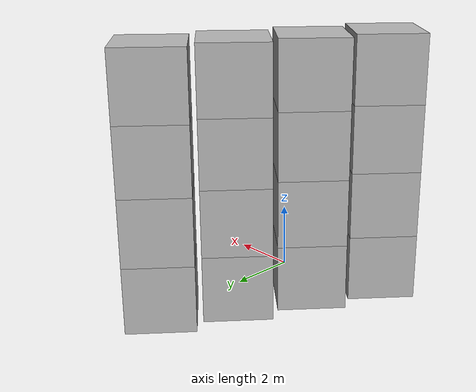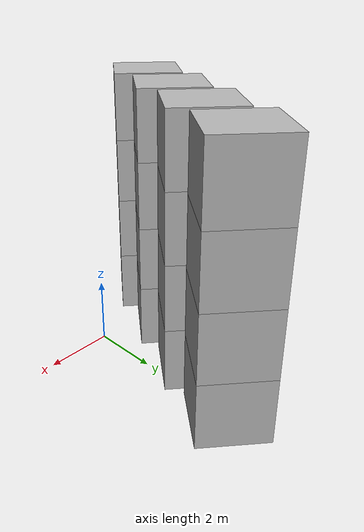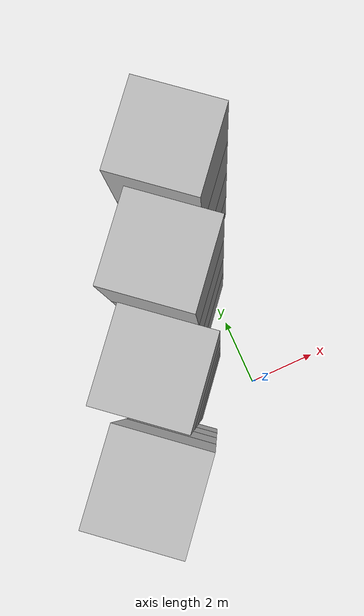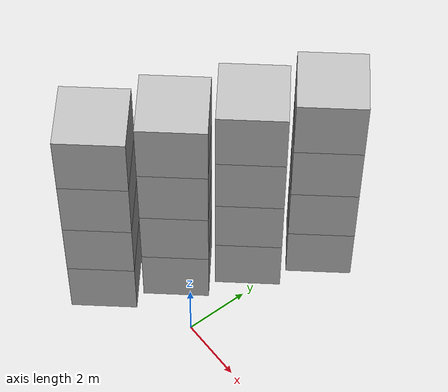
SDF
<sdf version="1.5">
 <world name="default">
  <camera name="user_camera"><pose>0 0 10 0 0.3 2.356</pose></camera>
  <include><uri>model://sun</uri></include>
  <physics name="default_physics" default="0" type="ode">
   <gravity>0 0 -9.8066</gravity>
   <ode>
    <solver>
     <type>quick</type>
     <iters>10</iters>
     <sor>1.3</sor>
     <use_dynamic_moi_rescaling>0</use_dynamic_moi_rescaling>
    </solver>
    <constraints>
     <cfm>0</cfm>
     <erp>0.2</erp>
     <contact_max_correcting_vel>100</contact_max_correcting_vel>
     <contact_surface_layer>0.001</contact_surface_layer>
    </constraints>
   </ode>
   <max_step_size>0.004</max_step_size>
   <real_time_factor>1</real_time_factor>
   <real_time_update_rate>250</real_time_update_rate>
   <magnetic_field>6.0e-6 2.3e-5 -4.2e-5</magnetic_field>
  </physics>
  <model name="obstacle_left_1">
   <static>true</static>
   <pose>-3 -1 1 0 0 -0.7</pose>
   <link name="link">
    <collision name="collision"><geometry><box><size>2 2 2</size></box></geometry></collision>
    <visual name="visual"><geometry><box><size>2 2 2</size></box></geometry></visual>
   </link>
  </model>
  <model name="obstacle_left_11">
   <static>true</static>
   <pose>-3 -1 3 0 0 -0.7</pose>
   <link name="link">
    <collision name="collision"><geometry><box><size>2 2 2</size></box></geometry></collision>
    <visual name="visual"><geometry><box><size>2 2 2</size></box></geometry></visual>
   </link>
  </model>
  <model name="obstacle_left_12">
   <static>true</static>
   <pose>-3 -1 5 0 0 -0.7</pose>
   <link name="link">
    <collision name="collision"><geometry><box><size>2 2 2</size></box></geometry></collision>
    <visual name="visual"><geometry><box><size>2 2 2</size></box></geometry></visual>
   </link>
  </model>
  <model name="obstacle_left_13">
   <static>true</static>
   <pose>-3 -1 7 0 0 -0.7</pose>
   <link name="link">
    <collision name="collision"><geometry><box><size>2 2 2</size></box></geometry></collision>
    <visual name="visual"><geometry><box><size>2 2 2</size></box></geometry></visual>
   </link>
  </model>
  <model name="obstacle_left_2">
   <static>true</static>
   <pose>-2 1 1 0 0 -0.7</pose>
   <link name="link">
    <collision name="collision"><geometry><box><size>2 2 2</size></box></geometry></collision>
    <visual name="visual"><geometry><box><size>2 2 2</size></box></geometry></visual>
   </link>
  </model>
  <model name="obstacle_left_21">
   <static>true</static>
   <pose>-2 1 3 0 0 -0.7</pose>
   <link name="link">
    <collision name="collision"><geometry><box><size>2 2 2</size></box></geometry></collision>
    <visual name="visual"><geometry><box><size>2 2 2</size></box></geometry></visual>
   </link>
  </model>
  <model name="obstacle_left_22">
   <static>true</static>
   <pose>-2 1 5 0 0 -0.7</pose>
   <link name="link">
    <collision name="collision"><geometry><box><size>2 2 2</size></box></geometry></collision>
    <visual name="visual"><geometry><box><size>2 2 2</size></box></geometry></visual>
   </link>
  </model>
  <model name="obstacle_left_23">
   <static>true</static>
   <pose>-2 1 7 0 0 -0.7</pose>
   <link name="link">
    <collision name="collision"><geometry><box><size>2 2 2</size></box></geometry></collision>
    <visual name="visual"><geometry><box><size>2 2 2</size></box></geometry></visual>
   </link>
  </model>
  <model name="obstacle_left_3">
   <static>true</static>
   <pose>-1 3 1 0 0 -0.7</pose>
   <link name="link">
    <collision name="collision"><geometry><box><size>2 2 2</size></box></geometry></collision>
    <visual name="visual"><geometry><box><size>2 2 2</size></box></geometry></visual>
   </link>
  </model>
  <model name="obstacle_left_31">
   <static>true</static>
   <pose>-1 3 3 0 0 -0.7</pose>
   <link name="link">
    <collision name="collision"><geometry><box><size>2 2 2</size></box></geometry></collision>
    <visual name="visual"><geometry><box><size>2 2 2</size></box></geometry></visual>
   </link>
  </model>
  <model name="obstacle_left_32">
   <static>true</static>
   <pose>-1 3 5 0 0 -0.7</pose>
   <link name="link">
    <collision name="collision"><geometry><box><size>2 2 2</size></box></geometry></collision>
    <visual name="visual"><geometry><box><size>2 2 2</size></box></geometry></visual>
   </link>
  </model>
  <model name="obstacle_left_33">
   <static>true</static>
   <pose>-1 3 7 0 0 -0.7</pose>
   <link name="link">
    <collision name="collision"><geometry><box><size>2 2 2</size></box></geometry></collision>
    <visual name="visual"><geometry><box><size>2 2 2</size></box></geometry></visual>
   </link>
  </model>
  <model name="obstacle_left_4">
   <static>true</static>
   <pose>0 5 1 0 0 -0.7</pose>
   <link name="link">
    <collision name="collision"><geometry><box><size>2 2 2</size></box></geometry></collision>
    <visual name="visual"><geometry><box><size>2 2 2</size></box></geometry></visual>
   </link>
  </model>
  <model name="obstacle_left_41">
   <static>true</static>
   <pose>0 5 3 0 0 -0.7</pose>
   <link name="link">
    <collision name="collision"><geometry><box><size>2 2 2</size></box></geometry></collision>
    <visual name="visual"><geometry><box><size>2 2 2</size></box></geometry></visual>
   </link>
  </model>
  <model name="obstacle_left_42">
   <static>true</static>
   <pose>0 5 5 0 0 -0.7</pose>
   <link name="link">
    <collision name="collision"><geometry><box><size>2 2 2</size></box></geometry></collision>
    <visual name="visual"><geometry><box><size>2 2 2</size></box></geometry></visual>
   </link>
  </model>
  <model name="obstacle_left_43">
   <static>true</static>
   <pose>0 5 7 0 0 -0.7</pose>
   <link name="link">
    <collision name="collision"><geometry><box><size>2 2 2</size></box></geometry></collision>
    <visual name="visual"><geometry><box><size>2 2 2</size></box></geometry></visual>
   </link>
  </model>
 </world>
</sdf>
